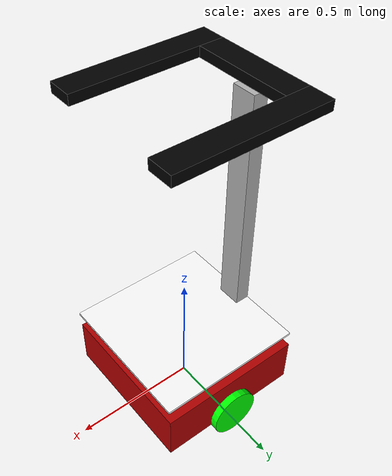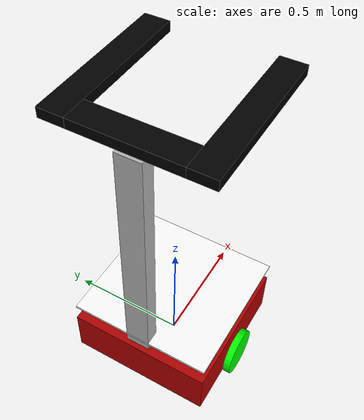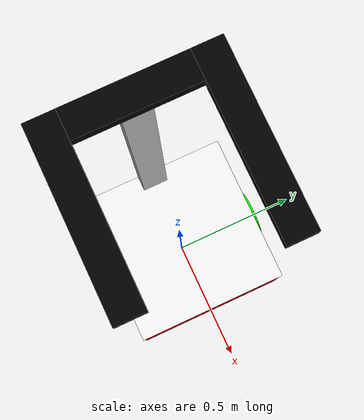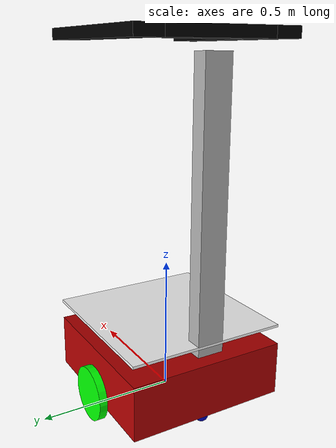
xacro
<?xml version="1.0"?>
<robot name="krever" xmlns:xacro="http://www.ros.org/wiki/xacro">

<!--colors-->
    <material name="green">
        <color rgba="0 1 0 1"/>
    </material>

    <material name="blue">
        <color rgba="0 0 0.7 1"/>
    </material>

    <material name="red">
        <color rgba="0.7 0 0 1"/>
    </material>

    <link name="base_footprint"/>

<!--base chassis-->
    <link name="base_link">
        <visual>
            <geometry>
                <box size="0.6 0.6 0.2"/>
            </geometry>
            <origin xyz="0 0 0.125" rpy="0 0 0"/>
            <material name="red"/>
        </visual>

        <collision>
            <geometry>
                <box size="0.6 0.6 0.2"/>
            </geometry>
            <origin xyz="0 0 0.125" rpy="0 0 0"/>
            <material name="red"/>
        </collision>

        <inertial>
            <origin xyz="0.0 0.0 0.125" rpy="0.0 0.0 0.0"/>
            <mass value="15.0"/>
            <inertia ixx="0.5" ixy="0.0" ixz="0.0" iyy="0.5" iyz="0.0" izz="0.9"/>
        </inertial>

    </link>

    <joint name="base_joint" type="fixed">
        <parent link="base_footprint"/>
        <child link="base_link"/>
        <origin xyz="0 0 0.0" rpy="0 0 0"/>
    </joint>

<!--lidar-->
    <link name="lidar">
        <visual>
            <geometry>
                <cylinder radius="0.1" length="0.05"/>
            </geometry>
            <origin xyz="0 0 0" rpy="0 0 0"/>
            <material name="blue"/>
        </visual>
        <collision>
            <geometry>
                <cylinder radius="0.1" length="0.05"/>
            </geometry>
            <origin xyz="0 0 0" rpy="0 0 0"/>
            <material name="blue"/>
        </collision>

        <inertial>
            <origin xyz="0.0 0.0 0.0" rpy="0.0 0.0 0.0"/>
            <mass value="0.4"/>
            <inertia ixx="0.0026" ixy="0.0" ixz="0.0" iyy="0.0026" iyz="0.0" izz="0.0003"/>
        </inertial>

    </link>

    <joint name="base_lidar_joint" type="fixed">
        <parent link="base_link"/>
        <child link="lidar"/>
        <origin xyz="0 0 0.25" rpy="0 0 0"/>
    </joint>

<!-- left wheel-->
    <link name="left_wheel">
        <visual>
            <geometry>
                <cylinder radius="0.1" length="0.03"/>
            </geometry>
            <origin xyz="0 0 0" rpy="1.57 0 0"/>
            <material name="green"/>
        </visual>
        <collision>
            <geometry>
                <cylinder radius="0.1" length="0.03"/>
            </geometry>
            <origin xyz="0 0 0" rpy="1.57 0 0"/>
            <material name="green"/>
        </collision>

        <inertial>
            <origin xyz="0.0 0.0 0.0" rpy="0.0 0.0 0.0"/>
            <mass value="0.8"/>
            <inertia ixx="0.004" ixy="0.0" ixz="0.0" iyy="0.004" iyz="0.0" izz="0.0006"/>
        </inertial>

    </link>

    <joint name="base_left_wheel_joint" type="continuous">
    <parent link="base_link"/>
        <child link="left_wheel"/>
        <origin xyz="0 0.315 0.05" rpy="0 0 0"/>
        <axis xyz="0 1 0"/>
    </joint>

<!--right wheel-->
    <link name="right_wheel">
        <visual>
            <geometry>
                <cylinder radius="0.1" length="0.03"/>
            </geometry>
            <origin xyz="0 0 0" rpy="1.57 0 0"/>
            <material name="green"/>
        </visual>
        <collision>
            <geometry>
                <cylinder radius="0.1" length="0.03"/>
            </geometry>
            <origin xyz="0 0 0" rpy="1.57 0 0"/>
            <material name="green"/>
        </collision>

        <inertial>
            <origin xyz="0.0 0.0 0.0" rpy="0.0 0.0 0.0"/>
            <mass value="0.8"/>
            <inertia ixx="0.004" ixy="0.0" ixz="0.0" iyy="0.004" iyz="0.0" izz="0.0006"/>
        </inertial>
    </link>

    <joint name="base_right_wheel_joint" type="continuous">
        <parent link="base_link"/>
        <child link="right_wheel"/>
        <origin xyz="-0 -0.315 0.05" rpy="0 0 0"/>
        <axis xyz="0 1 0"/>
    </joint>

<!-- caster wheel1 -->
    <link name="caster_wheel1">
        <visual>
            <geometry>
                <sphere radius="0.025"/>
            </geometry>
            <origin xyz="0 0 0" rpy="1.57 0 0"/>
            <material name="blue"/>
        </visual>
        <collision>
            <geometry>
                <sphere radius="0.025"/>
            </geometry>
            <origin xyz="0 0 0" rpy="1.57 0 0"/>
            <material name="blue"/>
        </collision>

        <inertial>
            <origin xyz="0.0 0.0 0.0" rpy="0.0 0.0 0.0"/>
            <mass value="0.1"/>
            <inertia ixx="0.000025" ixy="0.0" ixz="0.0" iyy="0.000025" iyz="0.0" izz="0.000025"/>
        </inertial>

    </link>

    <joint name="body_caster_wheel_joint1" type="fixed">
        <parent link="base_link"/>
        <child link="caster_wheel1"/>
        <origin xyz="0.25 0 0.0" rpy="0 0 0"/>
    </joint>

<!-- caster wheel2 -->
    <link name="caster_wheel2">
        <visual>
            <geometry>
                <sphere radius="0.025"/>
            </geometry>
            <origin xyz="0 0 0" rpy="1.57 0 0"/>
            <material name="blue"/>
        </visual>
        <collision>
            <geometry>
                <sphere radius="0.025"/>
            </geometry>
            <origin xyz="0 0 0" rpy="1.57 0 0"/>
            <material name="blue"/>
        </collision>

    </link>

    <joint name="body_caster_wheel_joint2" type="fixed">
        <parent link="base_link"/>
        <child link="caster_wheel2"/>
        <origin xyz="-0.25 0 0.0" rpy="0 0 0"/>
    </joint>

<!--supporint rod-->
    <link name="support_rod">
        <visual>
            <geometry>
                <box size="0.06 0.1 1.0" />
            </geometry>
            <material name="LightGrey">
                <color rgba="0.7 0.7 0.7 1.0"/>
            </material>
        </visual>
        <collision>
            <geometry>
                <box size="0.06 0.1 1.0" />
            </geometry>
        </collision>

        <inertial>
            <origin xyz="0.0 0.0 0.0" rpy="0.0 0.0 0.0"/>
            <mass value="0.0"/>
            <inertia ixx="1.2625" ixy="0.0" ixz="0.0" iyy="1.2545" iyz="0.0" izz="0.017"/>
        </inertial>

    </link>

    <joint name="base_suppot_joint" type="fixed">
        <origin xyz="-0.265 0. 0.76" rpy="0.0 0.0 0.0"/>
        <parent link="base_link"/>
        <child link="support_rod"/>
        <limit lower="0.0" upper="0.0" effort="0.0" velocity="0.0"/>
    </joint>

    <link name="u1">
        <visual>
            <geometry>
                <box size="0.4 0.1 0.04" />
            </geometry>
            <material name="black">
                <color rgba="0 0 0 1"/>
            </material>
        </visual>
        <collision>
            <geometry>
                <box size="0.4 0.1 0.04" />
            </geometry>
        </collision>

        <inertial>
            <origin xyz="0.0 0.0 0.0" rpy="0.0 0.0 0.0"/>
            <mass value="2"/>
            <inertia ixx="0.002" ixy="0.0" ixz="0.0" iyy="0.027" iyz="0.0" izz="0.028"/>
        </inertial>

    </link>

    <joint name="u1" type="fixed">
        <origin xyz="0 0 0.555" rpy="0.0 0.0 1.57"/>
        <parent link="support_rod"/>
        <child link="u1"/>
        <limit lower="0.0" upper="0.0" effort="0.0" velocity="0.0"/>
    </joint>

    <link name="u2">
        <visual>
            <geometry>
                <box size="0.6 0.1 0.04" />
            </geometry>
            <material name="black">
                <color rgba="0 0 0 1"/>
            </material>
        </visual>
        <collision>
            <geometry>
                <box size="0.6 0.1 0.04" />
            </geometry>
        </collision>

        <inertial>
            <origin xyz="0.0 0.0 0.0" rpy="0.0 0.0 0.0"/>
            <mass value="2"/>
            <inertia ixx="0.002" ixy="0.0" ixz="0.0" iyy="0.06" iyz="0.0" izz="0.061"/>
        </inertial>

    </link>

    <joint name="u2" type="fixed">
        <origin xyz="0.25 0.25 0.555" rpy="0.0 0.0 0"/>
        <parent link="support_rod"/>
        <child link="u2"/>
        <limit lower="0.0" upper="0.0" effort="0.0" velocity="0.0"/>
    </joint>

    <link name="u3">
        <visual>
            <geometry>
                <box size="0.6 0.1 0.04" />
            </geometry>
            <material name="black">
                <color rgba="0 0 0 1"/>
            </material>
        </visual>
        <collision>
            <geometry>
                <box size="0.6 0.1 0.04" />
            </geometry>
        </collision>

        <inertial>
            <origin xyz="0.0 0.0 0.0" rpy="0.0 0.0 0.0"/>
            <mass value="2"/>
            <inertia ixx="0.002" ixy="0.0" ixz="0.0" iyy="0.06" iyz="0.0" izz="0.061"/>
        </inertial>
    </link>

    <joint name="u3" type="fixed">
        <origin xyz="0.25 -0.25 0.555" rpy="0.0 0.0 0"/>
        <parent link="support_rod"/>
        <child link="u3"/>
        <limit lower="0.0" upper="0.0" effort="0.0" velocity="0.0"/>
    </joint>

<!--tray-->
    <link name="tray">
        <visual>
            <origin xyz="0.0 0.0 0.0" rpy="0.0 0.0 0.0"/>
            <geometry>
                <box size="0.6 0.6 0.01"/>
            </geometry>
            <material name="white">
                <color rgba="1.0 1.0 1.0 1.0"/>
            </material>
        </visual>
        <collision>
            <origin xyz="0.0 0.0 0.0" rpy="0.0 0.0 0.0"/>
            <geometry>
                <box size="0.6 0.6 0.01"/>
            </geometry>
        </collision>

        <inertial>
            <origin xyz="0.0 0.0 0.0" rpy="0.0 0.0 0.0"/>
            <mass value="5"/>
            <inertia ixx="0.154" ixy="0.0" ixz="0.0" iyy="0.154" iyz="0.0" izz="0.3"/>
        </inertial>

    </link>

    <joint name="joint_name" type="fixed">
        <origin xyz="0.27 0.0 -0.465" rpy="0.0 0.0 0.0"/>
        <parent link="support_rod"/>
        <child link="tray"/>
        <limit lower="0.0" upper="0.0" effort="0.0" velocity="0.0"/>
    </joint>
</robot>
